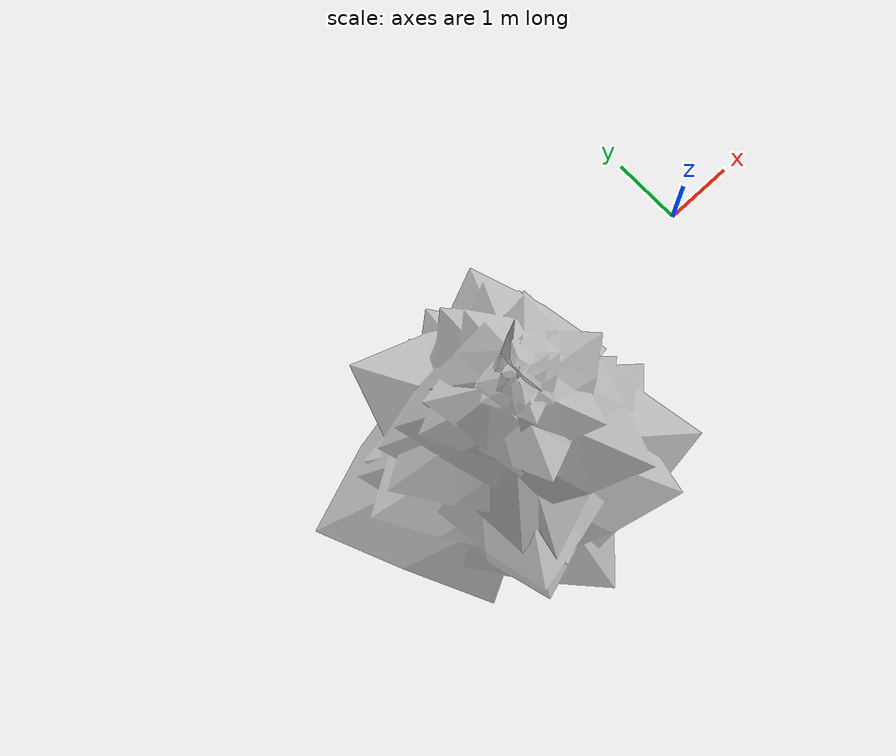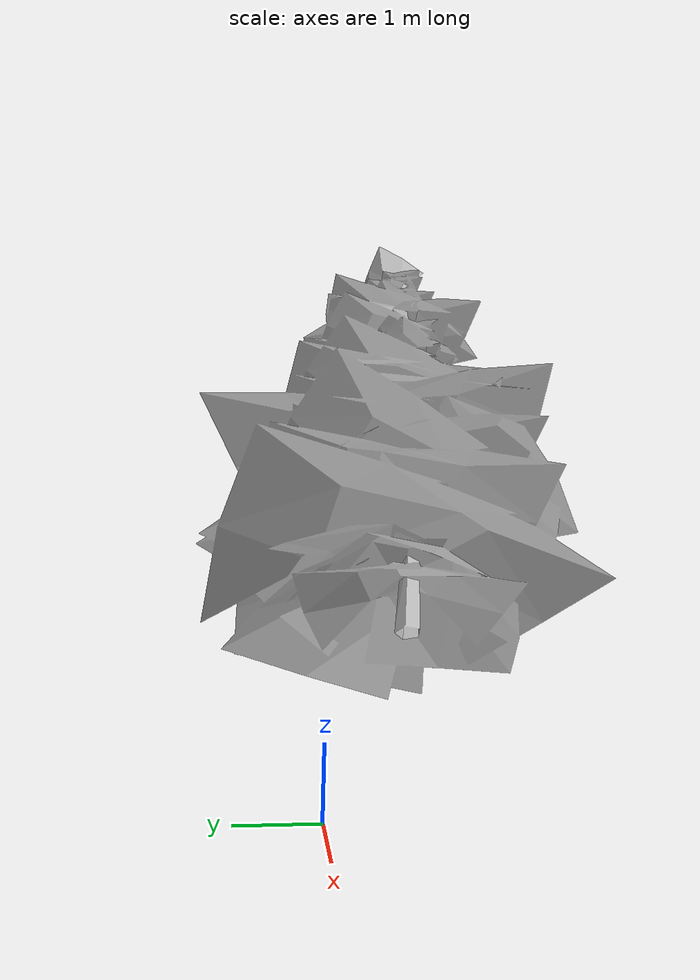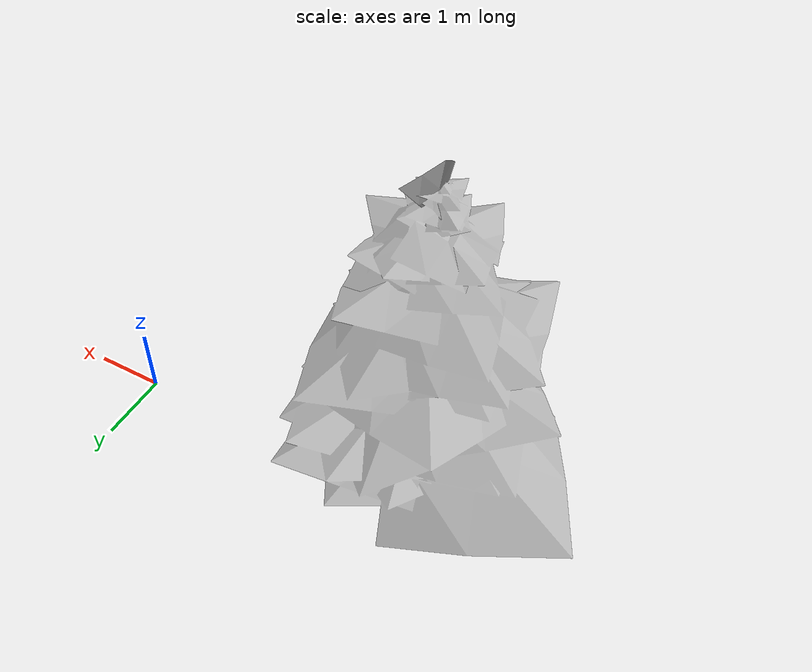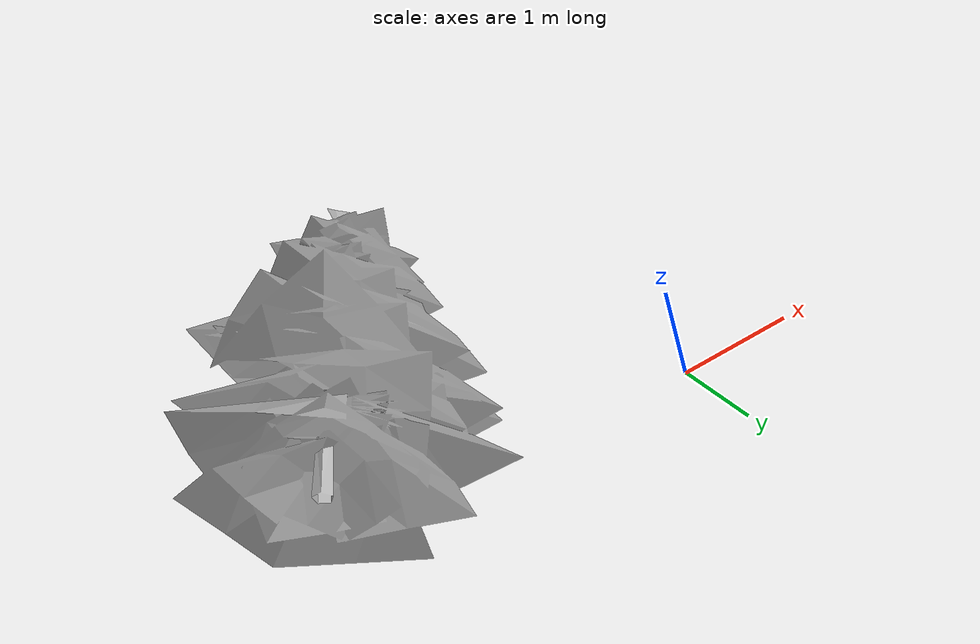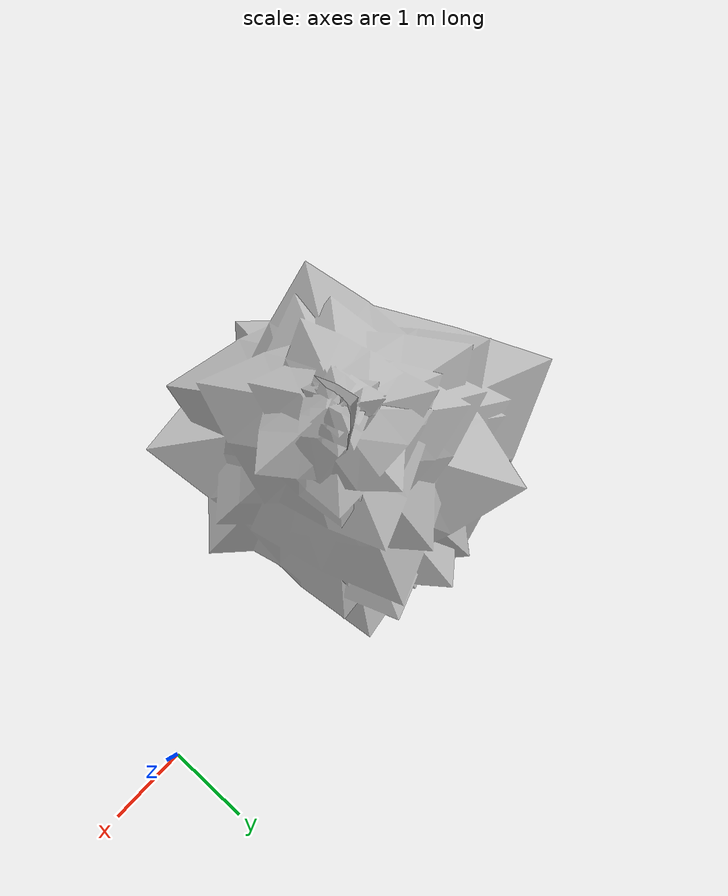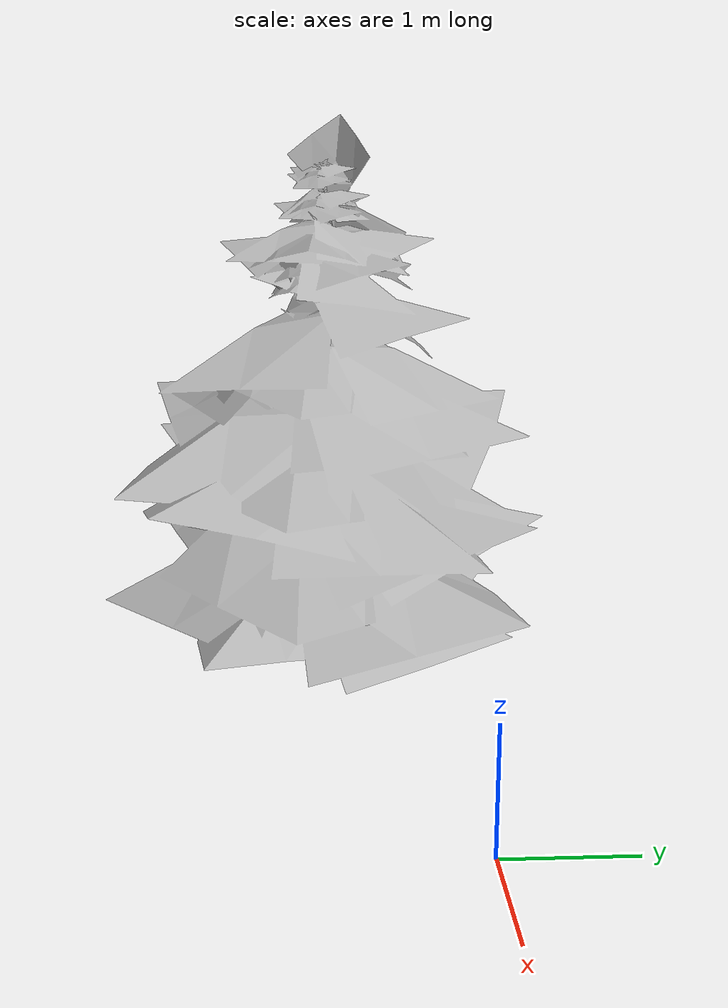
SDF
<?xml version="1.0" ?>
<sdf version="1.5">
  <model name="Pine Tree">
    <static>true</static>
    <link name="link">
      <collision name="collision">
        <geometry>
          <mesh>
            <uri>model://tree_pine/meshes/tree_pine.dae</uri>
          </mesh>
        </geometry>
        <surface>
          <contact>
            <ode>
              <max_vel>0.1</max_vel>
              <min_depth>0.001</min_depth>
            </ode>
          </contact>
        </surface>
      </collision>
      <visual name="visual">
        <geometry>
          <mesh>
            <uri>model://tree_pine/meshes/tree_pine.dae</uri>
          </mesh>
        </geometry>
      </visual>
    </link>
  </model>
</sdf>

<!-- vim: set et fenc=utf-8 ff=unix sts=0 sw=2 ts=2 : -->
